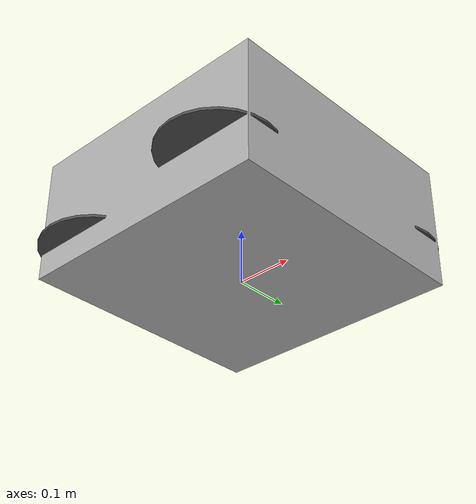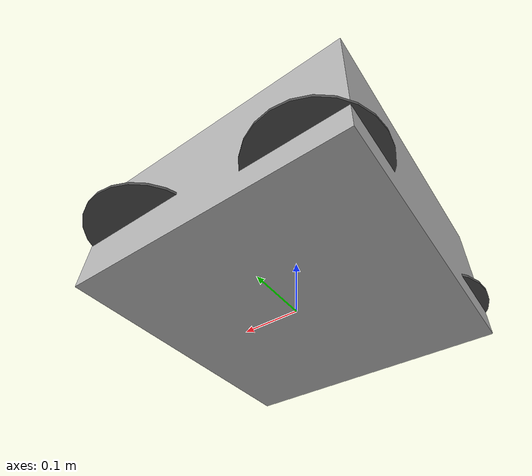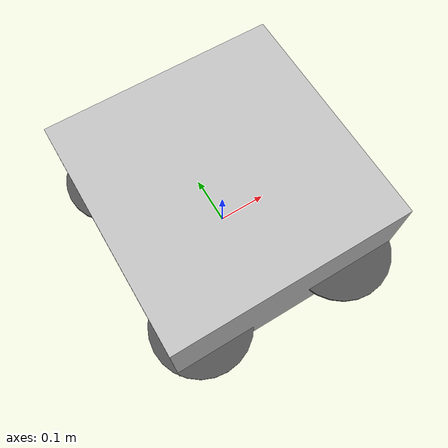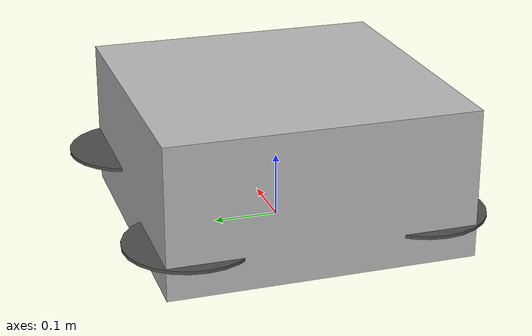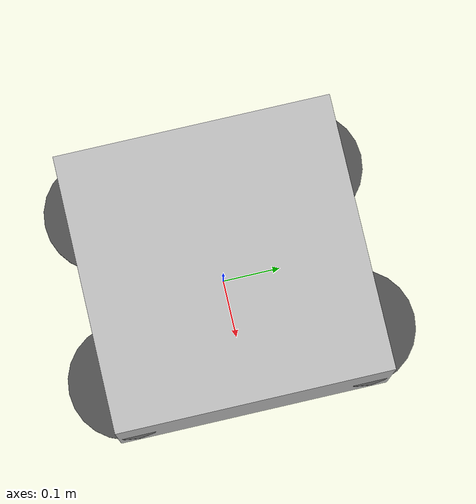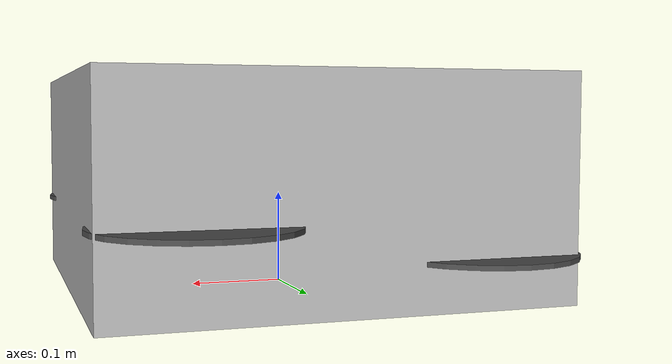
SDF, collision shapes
<?xml version='1.0'?>
<sdf version="1.6">
  <model name="iris_demo">
    <include>
      <uri>model://iris_with_standoffs</uri>
    </include>
    <include>
      <uri>model://gimbal_small_2d</uri>

      <pose>0.17 0 0.023 0 0 1.57</pose>
    </include>

    <joint name="iris_gimbal_mount" type="revolute">
      <parent>iris::base_link</parent>
      <child>gimbal_small_2d::base_link</child>
      <axis>
        <limit>
          <lower>0</lower>
          <upper>0</upper>
        </limit>
        <xyz>0 0 1</xyz>
        <use_parent_model_frame>true</use_parent_model_frame>
      </axis>
    </joint>

    <!-- plugins -->
    <plugin name="rotor_0_blade_1" filename="libLiftDragPlugin.so">
      <a0>0.1</a0>
      <alpha_stall>1.4</alpha_stall>
      <cla>0.2500</cla>
      <cda>0.10</cda>
      <cma>0.00</cma>
      <cla_stall>-0.025</cla_stall>
      <cda_stall>0.0</cda_stall>
      <cma_stall>0.0</cma_stall>
      <area>0.2</area>
      <air_density>1.2041</air_density>
      <cp>0.084 0 0</cp>
      <forward>0 1 0</forward>
      <upward>0 0 1</upward>
      <link_name>iris::rotor_0</link_name>
    </plugin>
    <plugin name="rotor_0_blade_2" filename="libLiftDragPlugin.so">
      <a0>0.1</a0>
      <alpha_stall>1.4</alpha_stall>
      <cla>0.2500</cla>
      <cda>0.10</cda>
      <cma>0.00</cma>
      <cla_stall>-0.025</cla_stall>
      <cda_stall>0.0</cda_stall>
      <cma_stall>0.0</cma_stall>
      <area>0.2</area>
      <air_density>1.2041</air_density>
      <cp>-0.084 0 0</cp>
      <forward>0 -1 0</forward>
      <upward>0 0 1</upward>
      <link_name>iris::rotor_0</link_name>
    </plugin>

    <plugin name="rotor_1_blade_1" filename="libLiftDragPlugin.so">
      <a0>0.1</a0>
      <alpha_stall>1.4</alpha_stall>
      <cla>0.2500</cla>
      <cda>0.10</cda>
      <cma>0.00</cma>
      <cla_stall>-0.025</cla_stall>
      <cda_stall>0.0</cda_stall>
      <cma_stall>0.0</cma_stall>
      <area>0.2</area>
      <air_density>1.2041</air_density>
      <cp>0.084 0 0</cp>
      <forward>0 1 0</forward>
      <upward>0 0 1</upward>
      <link_name>iris::rotor_1</link_name>
    </plugin>
    <plugin name="rotor_1_blade_2" filename="libLiftDragPlugin.so">
      <a0>0.1</a0>
      <alpha_stall>1.4</alpha_stall>
      <cla>0.2500</cla>
      <cda>0.10</cda>
      <cma>0.00</cma>
      <cla_stall>-0.025</cla_stall>
      <cda_stall>0.0</cda_stall>
      <cma_stall>0.0</cma_stall>
      <area>0.2</area>
      <air_density>1.2041</air_density>
      <cp>-0.084 0 0</cp>
      <forward>0 -1 0</forward>
      <upward>0 0 1</upward>
      <link_name>iris::rotor_1</link_name>
    </plugin>

    <plugin name="rotor_2_blade_1" filename="libLiftDragPlugin.so">
      <a0>0.1</a0>
      <alpha_stall>1.4</alpha_stall>
      <cla>0.2500</cla>
      <cda>0.10</cda>
      <cma>0.00</cma>
      <cla_stall>-0.025</cla_stall>
      <cda_stall>0.0</cda_stall>
      <cma_stall>0.0</cma_stall>
      <area>0.2</area>
      <air_density>1.2041</air_density>
      <cp>0.084 0 0</cp>
      <forward>0 -1 0</forward>
      <upward>0 0 1</upward>
      <link_name>iris::rotor_2</link_name>
    </plugin>
    <plugin name="rotor_2_blade_2" filename="libLiftDragPlugin.so">
      <a0>0.1</a0>
      <alpha_stall>1.4</alpha_stall>
      <cla>0.2500</cla>
      <cda>0.10</cda>
      <cma>0.00</cma>
      <cla_stall>-0.025</cla_stall>
      <cda_stall>0.0</cda_stall>
      <cma_stall>0.0</cma_stall>
      <area>0.2</area>
      <air_density>1.2041</air_density>
      <cp>-0.084 0 0</cp>
      <forward>0 1 0</forward>
      <upward>0 0 1</upward>
      <link_name>iris::rotor_2</link_name>
    </plugin>

    <plugin name="rotor_3_blade_1" filename="libLiftDragPlugin.so">
      <a0>0.1</a0>
      <alpha_stall>1.4</alpha_stall>
      <cla>0.2500</cla>
      <cda>0.10</cda>
      <cma>0.00</cma>
      <cla_stall>-0.025</cla_stall>
      <cda_stall>0.0</cda_stall>
      <cma_stall>0.0</cma_stall>
      <area>0.2</area>
      <air_density>1.2041</air_density>
      <cp>0.084 0 0</cp>
      <forward>0 -1 0</forward>
      <upward>0 0 1</upward>
      <link_name>iris::rotor_3</link_name>
    </plugin>
    <plugin name="rotor_3_blade_2" filename="libLiftDragPlugin.so">
      <a0>0.1</a0>
      <alpha_stall>1.4</alpha_stall>
      <cla>0.2500</cla>
      <cda>0.10</cda>
      <cma>0.00</cma>
      <cla_stall>-0.025</cla_stall>
      <cda_stall>0.0</cda_stall>
      <cma_stall>0.0</cma_stall>
      <area>0.2</area>
      <air_density>1.2041</air_density>
      <cp>-0.084 0 0</cp>
      <forward>0 1 0</forward>
      <upward>0 0 1</upward>
      <link_name>iris::rotor_3</link_name>
    </plugin>
    <plugin name="arducopter_plugin" filename="libArduCopterPlugin.so">
      <imuName>iris_demo::iris::iris/imu_link::imu_sensor</imuName>
      <connectionTimeoutMaxCount>5</connectionTimeoutMaxCount>
      <rotor id="0">
        <vel_p_gain>0.01</vel_p_gain>
        <vel_i_gain>0</vel_i_gain>
        <vel_d_gain>0</vel_d_gain>
        <vel_i_max>0</vel_i_max>
        <vel_i_min>0</vel_i_min>
        <vel_cmd_max>2.0</vel_cmd_max>
        <vel_cmd_min>-2.0</vel_cmd_min>
        <jointName>iris::rotor_0_joint</jointName>
        <turningDirection>ccw</turningDirection>
        <rotorVelocitySlowdownSim>1</rotorVelocitySlowdownSim>
      </rotor>
      <rotor id="1">
        <vel_p_gain>0.01</vel_p_gain>
        <vel_i_gain>0</vel_i_gain>
        <vel_d_gain>0</vel_d_gain>
        <vel_i_max>0</vel_i_max>
        <vel_i_min>0</vel_i_min>
        <vel_cmd_max>2.0</vel_cmd_max>
        <vel_cmd_min>-2.0</vel_cmd_min>
        <jointName>iris::rotor_1_joint</jointName>
        <turningDirection>ccw</turningDirection>
        <rotorVelocitySlowdownSim>1</rotorVelocitySlowdownSim>
      </rotor>
      <rotor id="2">
        <vel_p_gain>0.01</vel_p_gain>
        <vel_i_gain>0</vel_i_gain>
        <vel_d_gain>0</vel_d_gain>
        <vel_i_max>0</vel_i_max>
        <vel_i_min>0</vel_i_min>
        <vel_cmd_max>2.0</vel_cmd_max>
        <vel_cmd_min>-2.0</vel_cmd_min>
        <jointName>iris::rotor_2_joint</jointName>
        <turningDirection>cw</turningDirection>
        <rotorVelocitySlowdownSim>1</rotorVelocitySlowdownSim>
      </rotor>
      <rotor id="3">
        <vel_p_gain>0.01</vel_p_gain>
        <vel_i_gain>0</vel_i_gain>
        <vel_d_gain>0</vel_d_gain>
        <vel_i_max>0</vel_i_max>
        <vel_i_min>0</vel_i_min>
        <vel_cmd_max>2.0</vel_cmd_max>
        <vel_cmd_min>-2.0</vel_cmd_min>
        <jointName>iris::rotor_3_joint</jointName>
        <turningDirection>cw</turningDirection>
        <rotorVelocitySlowdownSim>1</rotorVelocitySlowdownSim>
      </rotor>
    </plugin>

  </model>
</sdf>

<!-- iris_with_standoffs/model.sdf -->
<sdf version='1.6'>
  <model name='iris'>
    <pose>0 0 0.194923 0 0 0</pose>
    <link name='base_link'>
      <velocity_decay>
        <linear>0.0</linear>
        <angular>0.0</angular>
      </velocity_decay>
      <inertial>
        <pose>0 0 0 0 0 0</pose>
        <mass>1.5</mass>
        <inertia>
          <ixx>0.008</ixx>
          <ixy>0</ixy>
          <ixz>0</ixz>
          <iyy>0.015</iyy>
          <iyz>0</iyz>
          <izz>0.017</izz>
        </inertia>
      </inertial>
      <collision name='base_link_collision'>
        <pose>0 0 -0.08 0 0 0</pose>
        <geometry>
          <box>
            <size>0.47 0.47 0.23</size>
          </box>
        </geometry>
        <surface>
          <contact>
            <ode>
              <max_vel>100.0</max_vel>
              <min_depth>0.001</min_depth>
            </ode>
          </contact>
          <friction>
            <ode>
              <mu>1.0</mu>
              <mu2>1.0</mu2>
            </ode>
          </friction>
        </surface>
      </collision>
      <visual name='base_link_visual'>
        <pose>0 0 -0.11 0 0 3.14</pose>
        <geometry>
          <mesh>
            <uri>model://iris_with_standoffs/meshes/iris_.dae</uri>
          </mesh>
        </geometry>
      </visual>

    </link>
    <link name='iris/ground_truth/odometry_sensorgt_link'>
      <pose>0 0 0 0 -0 0</pose>
      <inertial>
        <pose>0 0 0 0 -0 0</pose>
        <mass>0.15</mass>
        <inertia>
          <ixx>0.0001</ixx>
          <ixy>0</ixy>
          <ixz>0</ixz>
          <iyy>0.0002</iyy>
          <iyz>0</iyz>
          <izz>0.0002</izz>
        </inertia>
      </inertial>
    </link>
    <joint name='iris/ground_truth/odometry_sensorgt_joint' type='revolute'>
      <child>iris/ground_truth/odometry_sensorgt_link</child>
      <parent>base_link</parent>
      <axis>
        <xyz>0 0 1</xyz>
        <limit>
          <lower>0</lower>
          <upper>0</upper>
          <effort>0</effort>
          <velocity>0</velocity>
        </limit>
        <dynamics>
          <damping>1.0</damping>
        </dynamics>
        <use_parent_model_frame>1</use_parent_model_frame>
      </axis>
      <physics>
        <ode>
          <implicit_spring_damper>1</implicit_spring_damper>
        </ode>
      </physics>
    </joint>
    <link name='iris/imu_link'>
      <inertial>
        <pose>0 0 0 0 0 0</pose>
        <mass>0.15</mass>
        <inertia>
          <ixx>0.00001</ixx>
          <ixy>0</ixy>
          <ixz>0</ixz>
          <iyy>0.00002</iyy>
          <iyz>0</iyz>
          <izz>0.00002</izz>
        </inertia>
      </inertial>
      <sensor name="imu_sensor" type="imu">
        <pose>0 0 0 3.141593 0 0</pose>
        <always_on>1</always_on>
        <update_rate>1000.0</update_rate>
      </sensor>
    </link>
    <joint name='iris/imu_joint' type='revolute'>
      <child>iris/imu_link</child>
      <parent>base_link</parent>
      <axis>
        <xyz>0 0 1</xyz>
        <limit>
          <lower>0</lower>
          <upper>0</upper>
          <effort>0</effort>
          <velocity>0</velocity>
        </limit>
        <dynamics>
          <damping>1.0</damping>
        </dynamics>
        <use_parent_model_frame>1</use_parent_model_frame>
      </axis>
      <physics>
        <ode>
          <implicit_spring_damper>1</implicit_spring_damper>
        </ode>
      </physics>
    </joint>
    <link name='rotor_0'>
      <pose>0.14 -0.2 -0.11 0 -0 0</pose>
      <inertial>
        <pose>0 0 0 0 -0 0</pose>
        <mass>0.025</mass>
        <inertia>
          <ixx>9.75e-06</ixx>
          <ixy>0</ixy>
          <ixz>0</ixz>
          <iyy>0.000166704</iyy>
          <iyz>0</iyz>
          <izz>0.000167604</izz>
        </inertia>
      </inertial>
      <collision name='rotor_0_collision'>
        <pose>0 0 0 0 -0 0</pose>
        <geometry>
          <cylinder>
            <length>0.005</length>
            <radius>0.1</radius>
          </cylinder>
        </geometry>
        <surface>
          <contact>
            <ode/>
          </contact>
          <friction>
            <ode/>
          </friction>
        </surface>
      </collision>
      <visual name='rotor_0_visual'>
        <pose>0 0 0 0 -0 0</pose>
        <geometry>
          <mesh>
            <scale>0.5 0.5 0.5</scale>
            <uri>model://iris_with_standoffs/meshes/iris_prop_ccw.dae</uri>
          </mesh>
        </geometry>
        <material>
          <script>
            <name>Gazebo/DarkGrey</name>
            <uri>__default__</uri>
          </script>
        </material>
      </visual>
      <gravity>1</gravity>
      <velocity_decay/>
      <self_collide>0</self_collide>
    </link>
    <joint name='rotor_0_joint' type='revolute'>
      <child>rotor_0</child>
      <parent>base_link</parent>
      <axis>
        <xyz>0 0 1</xyz>
        <limit>
          <lower>-1e+16</lower>
          <upper>1e+16</upper>
        </limit>
        <dynamics>
          <damping>0.004</damping>
        </dynamics>
        <use_parent_model_frame>1</use_parent_model_frame>
      </axis>
      <physics>
        <ode>
          <implicit_spring_damper>1</implicit_spring_damper>
        </ode>
      </physics>
    </joint>
    <link name='rotor_1'>
      <pose>-0.155 0.18 -0.147 0 -0 0</pose>
      <inertial>
        <pose>0 0 0 0 -0 0</pose>
        <mass>0.025</mass>
        <inertia>
          <ixx>9.75e-06</ixx>
          <ixy>0</ixy>
          <ixz>0</ixz>
          <iyy>0.000166704</iyy>
          <iyz>0</iyz>
          <izz>0.000167604</izz>
        </inertia>
      </inertial>
      <collision name='rotor_1_collision'>
        <pose>0 0 0 0 -0 0</pose>
        <geometry>
          <cylinder>
            <length>0.005</length>
            <radius>0.1</radius>
          </cylinder>
        </geometry>
        <surface>
          <contact>
            <ode/>
          </contact>
          <friction>
            <ode/>
          </friction>
        </surface>
      </collision>
      <visual name='rotor_1_visual'>
        <pose>0 0 0 0 -0 0</pose>
        <geometry>
          <mesh>
            <scale>0.5 0.5 0.5</scale>
            <uri>model://iris_with_standoffs/meshes/iris_prop_ccw.dae</uri>
          </mesh>
        </geometry>
        <material>
          <script>
            <name>Gazebo/DarkGrey</name>
            <uri>__default__</uri>
          </script>
        </material>
      </visual>
      <gravity>1</gravity>
      <velocity_decay/>
      <self_collide>0</self_collide>
    </link>
    <joint name='rotor_1_joint' type='revolute'>
      <child>rotor_1</child>
      <parent>base_link</parent>
      <axis>
        <xyz>0 0 1</xyz>
        <limit>
          <lower>-1e+16</lower>
          <upper>1e+16</upper>
        </limit>
        <dynamics>
          <damping>0.004</damping>
        </dynamics>
        <use_parent_model_frame>1</use_parent_model_frame>
      </axis>
      <physics>
        <ode>
          <implicit_spring_damper>1</implicit_spring_damper>
        </ode>
      </physics>
    </joint>
    <link name='rotor_2'>
      <pose>0.14 0.2 -0.11 0 -0 0</pose>
      <inertial>
        <pose>0 0 0 0 -0 0</pose>
        <mass>0.025</mass>
        <inertia>
          <ixx>9.75e-06</ixx>
          <ixy>0</ixy>
          <ixz>0</ixz>
          <iyy>0.000166704</iyy>
          <iyz>0</iyz>
          <izz>0.000167604</izz>
        </inertia>
      </inertial>
      <collision name='rotor_2_collision'>
        <pose>0 0 0 0 -0 0</pose>
        <geometry>
          <cylinder>
            <length>0.005</length>
            <radius>0.1</radius>
          </cylinder>
        </geometry>
        <surface>
          <contact>
            <ode/>
          </contact>
          <friction>
            <ode/>
          </friction>
        </surface>
      </collision>
      <visual name='rotor_2_visual'>
        <pose>0 0 0 0 -0 0</pose>
        <geometry>
          <mesh>
            <scale>0.5 0.5 0.5</scale>
            <uri>model://iris_with_standoffs/meshes/iris_prop_cw.dae</uri>
          </mesh>
        </geometry>
        <material>
          <script>
            <name>Gazebo/DarkGrey</name>
            <uri>__default__</uri>
          </script>
        </material>
      </visual>
      <gravity>1</gravity>
      <velocity_decay/>
      <self_collide>0</self_collide>
    </link>
    <joint name='rotor_2_joint' type='revolute'>
      <child>rotor_2</child>
      <parent>base_link</parent>
      <axis>
        <xyz>0 0 1</xyz>
        <limit>
          <lower>-1e+16</lower>
          <upper>1e+16</upper>
        </limit>
        <dynamics>
          <damping>0.004</damping>
        </dynamics>
        <use_parent_model_frame>1</use_parent_model_frame>
      </axis>
      <physics>
        <ode>
          <implicit_spring_damper>1</implicit_spring_damper>
        </ode>
      </physics>
    </joint>
    <link name='rotor_3'>
      <pose>-0.155 -0.18 -0.147 0 -0 0</pose>
      <inertial>
        <pose>0 0 0 0 -0 0</pose>
        <mass>0.025</mass>
        <inertia>
          <ixx>9.75e-06</ixx>
          <ixy>0</ixy>
          <ixz>0</ixz>
          <iyy>0.000166704</iyy>
          <iyz>0</iyz>
          <izz>0.000167604</izz>
        </inertia>
      </inertial>
      <collision name='rotor_3_collision'>
        <pose>0 0 0 0 -0 0</pose>
        <geometry>
          <cylinder>
            <length>0.005</length>
            <radius>0.1</radius>
          </cylinder>
        </geometry>
        <surface>
          <contact>
            <ode/>
          </contact>
          <friction>
            <ode/>
          </friction>
        </surface>
      </collision>
      <visual name='rotor_3_visual'>
        <pose>0 0 0 0 -0 0</pose>
        <geometry>
          <mesh>
            <scale>0.5 0.5 0.5</scale>
            <uri>model://iris_with_standoffs/meshes/iris_prop_cw.dae</uri>
          </mesh>
        </geometry>
        <material>
          <script>
            <name>Gazebo/DarkGrey</name>
            <uri>__default__</uri>
          </script>
        </material>
      </visual>
      <gravity>1</gravity>
      <velocity_decay/>
      <self_collide>0</self_collide>
    </link>
    <joint name='rotor_3_joint' type='revolute'>
      <child>rotor_3</child>
      <parent>base_link</parent>
      <axis>
        <xyz>0 0 1</xyz>
        <limit>
          <lower>-1e+16</lower>
          <upper>1e+16</upper>
        </limit>
        <dynamics>
          <damping>0.004</damping>
        </dynamics>
        <use_parent_model_frame>1</use_parent_model_frame>
      </axis>
      <physics>
        <ode>
          <implicit_spring_damper>1</implicit_spring_damper>
        </ode>
      </physics>
    </joint>
    <static>0</static>
  </model>
</sdf>

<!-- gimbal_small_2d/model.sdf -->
<sdf version='1.6'>
  <model name='gimbal_small_2d'>
    <pose>0 0 0.18 0 0 0</pose>

    <link name='base_link'>
       <inertial>
        <mass>0.2</mass>
        <inertia>
          <ixx>0.0001</ixx>
          <ixy>0</ixy>
          <ixz>0</ixz>
          <iyy>0.0001</iyy>
          <iyz>0</iyz>
          <izz>0.0001</izz>
        </inertia>
      </inertial>

    </link>

    <link name='tilt_link'>
       <inertial>
        <mass>0.01</mass>
        <inertia>
          <ixx>0.00001</ixx>
          <ixy>0</ixy>
          <ixz>0</ixz>
          <iyy>0.00001</iyy>
          <iyz>0</iyz>
          <izz>0.00001</izz>
        </inertia>
      </inertial>

      <sensor name="camera" type="camera">
        <pose>0 0 0 0 3.14 1.57</pose>
        <camera>
          <horizontal_fov>1.0</horizontal_fov>
          <image>
            <width>640</width>
            <height>480</height>
          </image>
          <clip>
            <near>0.05</near>
            <far>15000</far>
          </clip>
        </camera>
        <always_on>1</always_on>
        <update_rate>10</update_rate>
        <visualize>1</visualize>
        <plugin name="camera_controller" filename="libgazebo_ros_camera.so">
          <alwaysOn>true</alwaysOn>
          <updateRate>0.0</updateRate>
          <cameraName>webcam</cameraName>
          <imageTopicName>image_raw</imageTopicName>
          <cameraInfoTopicName>camera_info</cameraInfoTopicName>
          <frameName>camera_link</frameName>
          <hackBaseline>0.07</hackBaseline>
          <distortionK1>0.0</distortionK1>
          <distortionK2>0.0</distortionK2>
          <distortionK3>0.0</distortionK3>
          <distortionT1>0.0</distortionT1>
          <distortionT2>0.0</distortionT2>
      </plugin>

      </sensor>

    </link>

    <joint name='tilt_joint' type='revolute'>
       <parent>base_link</parent>
       <child>tilt_link</child>

      <physics>
        <ode>
          <implicit_spring_damper>1</implicit_spring_damper>
        </ode>
      </physics>

      <axis>
        <xyz>1 0 0</xyz>
        <dynamics>
          <damping>0.5</damping>
        </dynamics>
        <use_parent_model_frame>1</use_parent_model_frame>
        <limit>
          <lower>-0.1</lower>
          <upper>3.14159265</upper>
          <effort>10</effort>
          <velocity>-1</velocity>
        </limit>
      </axis>
      <pose>0 0 0.02 0 0 0</pose>
    </joint>

    <plugin name="gimbal_small_2d" filename="libGimbalSmall2dPlugin.so">
      <joint>tilt_joint</joint>
    </plugin>
  </model>
</sdf>
